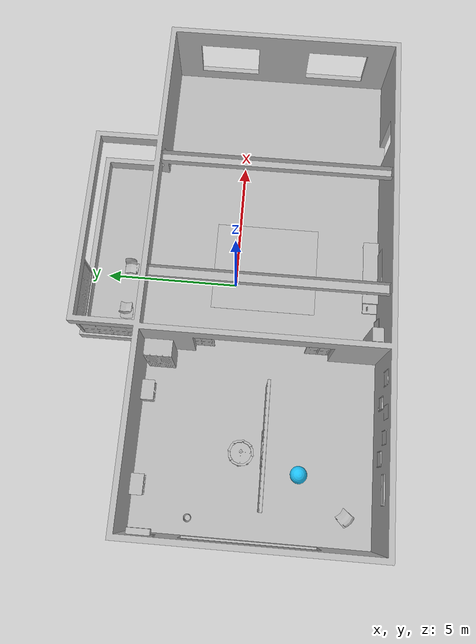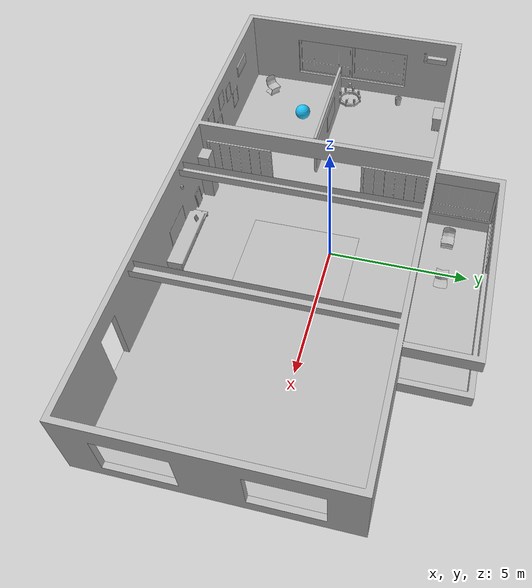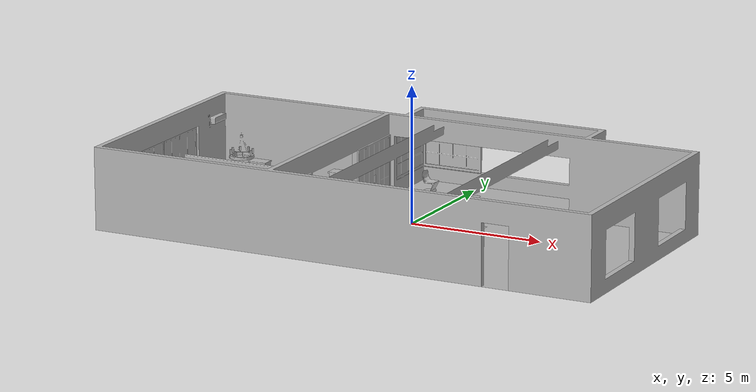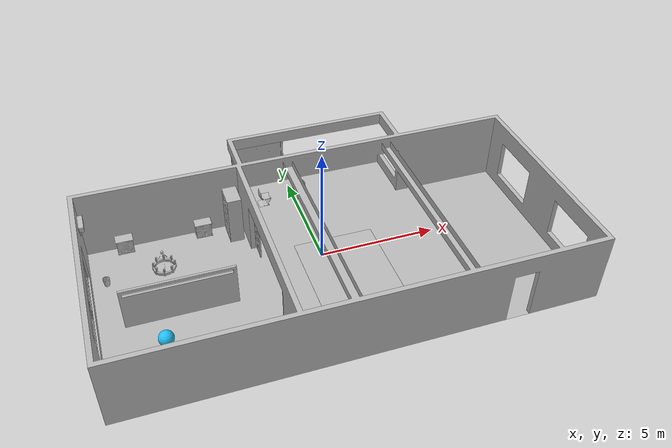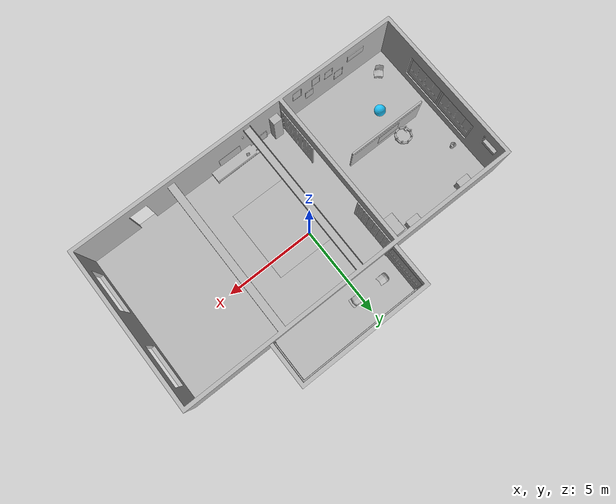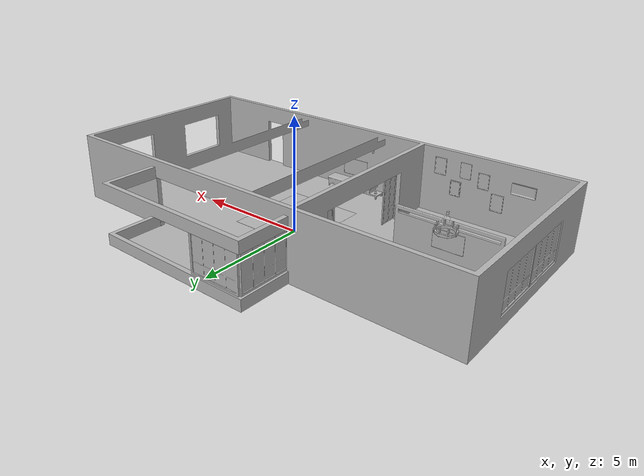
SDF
<sdf version="1.7">
 <world name="default">
  <model name="AirconditionerA_01_001">
   <static>1</static>
   <frame name="aws_robomaker_residential_AirconditionerA_01::__model__" attached_to="aws_robomaker_residential_AirconditionerA_01::link">
    <pose relative_to="__model__">0 0 0 0 -0 0</pose>
   </frame>
   <link name="aws_robomaker_residential_AirconditionerA_01::link">
    <inertial><mass>1</mass></inertial>
    <collision name="collision">
     <geometry>
      <mesh>
       <uri>model://aws_robomaker_residential_AirconditionerA_01/meshes/aws_AirconditionerA_01_collision.DAE</uri>
       <scale>1 1 1</scale>
      </mesh>
     </geometry>
    </collision>
    <visual name="visual">
     <geometry>
      <mesh>
       <uri>model://aws_robomaker_residential_AirconditionerA_01/meshes/aws_AirconditionerA_01_visual.DAE</uri>
      </mesh>
     </geometry>
     <meta><layer>1</layer></meta>
    </visual>
    <pose relative_to="aws_robomaker_residential_AirconditionerA_01::__model__">0 0 0 0 -0 0</pose>
   </link>
   <static>1</static>
   <pose>-9.19941 2.41123 2.08454 0 -0 0</pose>
  </model>
  <model name="AirconditionerB_01_001">
   <static>1</static>
   <frame name="aws_robomaker_residential_AirconditionerB_01::__model__" attached_to="aws_robomaker_residential_AirconditionerB_01::link">
    <pose relative_to="__model__">0 0 0 0 -0 0</pose>
   </frame>
   <link name="aws_robomaker_residential_AirconditionerB_01::link">
    <inertial><mass>1</mass></inertial>
    <collision name="collision">
     <geometry>
      <mesh>
       <uri>model://aws_robomaker_residential_AirconditionerB_01/meshes/aws_AirconditionerB_01_collision.DAE</uri>
       <scale>1 1 1</scale>
      </mesh>
     </geometry>
    </collision>
    <visual name="visual">
     <geometry>
      <mesh>
       <uri>model://aws_robomaker_residential_AirconditionerB_01/meshes/aws_AirconditionerB_01_visual.DAE</uri>
      </mesh>
     </geometry>
     <meta><layer>1</layer></meta>
    </visual>
    <pose relative_to="aws_robomaker_residential_AirconditionerB_01::__model__">0 0 0 0 -0 0</pose>
   </link>
   <pose>-2.00466 -5.22661 0.003485 0 -0 0</pose>
  </model>
  <model name="Ball_01_003">
   <static>1</static>
   <frame name="aws_robomaker_residential_Ball_01::__model__" attached_to="aws_robomaker_residential_Ball_01::link">
    <pose relative_to="__model__">0 0 0 0 -0 0</pose>
   </frame>
   <link name="aws_robomaker_residential_Ball_01::link">
    <inertial>
     <mass>0.12</mass>
     <inertia>
      <ixx>0.030752</ixx>
      <ixy>0</ixy>
      <ixz>0</ixz>
      <iyy>0.030752</iyy>
      <iyz>0</iyz>
      <izz>0.030752</izz>
     </inertia>
    </inertial>
    <collision name="collision">
     <geometry><sphere><radius>0.31</radius></sphere></geometry>
     <surface>
      <friction><ode><mu>0.85</mu><mu2>0.85</mu2></ode></friction>
      <contact><ode><kd>8500</kd><max_vel>5.1</max_vel></ode></contact>
     </surface>
    </collision>
    <visual name="visual">
     <geometry><sphere><radius>0.31</radius></sphere></geometry>
     <material><diffuse>0.12 0.76 0.97 1</diffuse><ambient>0.03 0.21 0.27 1</ambient></material>
     <meta><layer>1</layer></meta>
    </visual>
    <pose relative_to="aws_robomaker_residential_Ball_01::__model__">0 0 0 0 -0 0</pose>
   </link>
   <pose>-6.9455 -2.81099 0.318684 0 -0 0</pose>
  </model>
  <model name="NightStand_01_001">
   <static>1</static>
   <frame name="aws_robomaker_residential_NightStand_01::__model__" attached_to="aws_robomaker_residential_NightStand_01::link">
    <pose relative_to="__model__">0 0 0 0 -0 0</pose>
   </frame>
   <link name="aws_robomaker_residential_NightStand_01::link">
    <inertial>
     <mass>13.6</mass>
     <inertia><ixx>0.6165</ixx><ixy>0</ixy><ixz>0</ixz><iyy>1.29664</iyy><iyz>0</iyz><izz>0.7706</izz></inertia>
    </inertial>
    <collision name="collision">
     <geometry>
      <mesh>
       <uri>model://aws_robomaker_residential_NightStand_01/meshes/aws_NightStand_01_collision.DAE</uri>
       <scale>1 1 1</scale>
      </mesh>
     </geometry>
    </collision>
    <visual name="visual">
     <geometry>
      <mesh><uri>model://aws_robomaker_residential_NightStand_01/meshes/aws_NightStand_01_visual.DAE</uri></mesh>
     </geometry>
     <meta><layer>1</layer></meta>
    </visual>
    <pose relative_to="aws_robomaker_residential_NightStand_01::__model__">0 0 0 0 -0 0</pose>
   </link>
   <static>1</static>
   <pose>-7.72551 2.86042 0.005258 -2e-06 0 0</pose>
  </model>
  <model name="NightStand_01_002">
   <static>1</static>
   <frame name="aws_robomaker_residential_NightStand_01::__model__" attached_to="aws_robomaker_residential_NightStand_01::link">
    <pose relative_to="__model__">0 0 0 0 -0 0</pose>
   </frame>
   <link name="aws_robomaker_residential_NightStand_01::link">
    <inertial>
     <mass>13.6</mass>
     <inertia><ixx>0.6165</ixx><ixy>0</ixy><ixz>0</ixz><iyy>1.29664</iyy><iyz>0</iyz><izz>0.7706</izz></inertia>
    </inertial>
    <collision name="collision">
     <geometry>
      <mesh>
       <uri>model://aws_robomaker_residential_NightStand_01/meshes/aws_NightStand_01_collision.DAE</uri>
       <scale>1 1 1</scale>
      </mesh>
     </geometry>
    </collision>
    <visual name="visual">
     <geometry>
      <mesh><uri>model://aws_robomaker_residential_NightStand_01/meshes/aws_NightStand_01_visual.DAE</uri></mesh>
     </geometry>
     <meta><layer>1</layer></meta>
    </visual>
    <pose relative_to="aws_robomaker_residential_NightStand_01::__model__">0 0 0 0 -0 0</pose>
   </link>
   <static>1</static>
   <pose>-4.40734 2.86042 0.005256 0 2e-06 0</pose>
  </model>
  <model name="ChairD_01_001">
   <static>1</static>
   <frame name="aws_robomaker_residential_ChairD_01::__model__" attached_to="aws_robomaker_residential_ChairD_01::link">
    <pose relative_to="__model__">0 0 0 0 -0 0</pose>
   </frame>
   <link name="aws_robomaker_residential_ChairD_01::link">
    <inertial>
     <mass>4.5</mass>
     <inertia><ixy>0</ixy><ixz>0</ixz><iyz>0</iyz><ixx>0.217</ixx><iyy>0.217</iyy><izz>0.067</izz></inertia>
    </inertial>
    <collision name="collision">
     <geometry>
      <mesh>
       <uri>model://aws_robomaker_residential_ChairD_01/meshes/aws_ChairD_01_collision.DAE</uri>
       <scale>1 1 1</scale>
      </mesh>
     </geometry>
    </collision>
    <visual name="visual">
     <geometry>
      <mesh><uri>model://aws_robomaker_residential_ChairD_01/meshes/aws_ChairD_01_visual.DAE</uri></mesh>
     </geometry>
     <meta><layer>1</layer></meta>
    </visual>
    <pose relative_to="aws_robomaker_residential_ChairD_01::__model__">0 0 0 0 -0 0</pose>
   </link>
   <pose>-1.38078 4.10446 0 0 -0 0</pose>
  </model>
  <model name="ChairD_01_002">
   <static>1</static>
   <frame name="aws_robomaker_residential_ChairD_01::__model__" attached_to="aws_robomaker_residential_ChairD_01::link">
    <pose relative_to="__model__">0 0 0 0 -0 0</pose>
   </frame>
   <link name="aws_robomaker_residential_ChairD_01::link">
    <inertial>
     <mass>4.5</mass>
     <inertia><ixy>0</ixy><ixz>0</ixz><iyz>0</iyz><ixx>0.217</ixx><iyy>0.217</iyy><izz>0.067</izz></inertia>
    </inertial>
    <collision name="collision">
     <geometry>
      <mesh>
       <uri>model://aws_robomaker_residential_ChairD_01/meshes/aws_ChairD_01_collision.DAE</uri>
       <scale>1 1 1</scale>
      </mesh>
     </geometry>
    </collision>
    <visual name="visual">
     <geometry>
      <mesh><uri>model://aws_robomaker_residential_ChairD_01/meshes/aws_ChairD_01_visual.DAE</uri></mesh>
     </geometry>
     <meta><layer>1</layer></meta>
    </visual>
    <pose relative_to="aws_robomaker_residential_ChairD_01::__model__">0 0 0 0 -0 0</pose>
   </link>
   <pose>0.325214 4.10446 0 0 0 -3.13874</pose>
  </model>
  <model name="ChairD_01_003">
   <static>1</static>
   <frame name="aws_robomaker_residential_ChairD_01::__model__" attached_to="aws_robomaker_residential_ChairD_01::link">
    <pose relative_to="__model__">0 0 0 0 -0 0</pose>
   </frame>
   <link name="aws_robomaker_residential_ChairD_01::link">
    <inertial>
     <mass>4.5</mass>
     <inertia><ixy>0</ixy><ixz>0</ixz><iyz>0</iyz><ixx>0.217</ixx><iyy>0.217</iyy><izz>0.067</izz></inertia>
    </inertial>
    <collision name="collision">
     <geometry>
      <mesh>
       <uri>model://aws_robomaker_residential_ChairD_01/meshes/aws_ChairD_01_collision.DAE</uri>
       <scale>1 1 1</scale>
      </mesh>
     </geometry>
    </collision>
    <visual name="visual">
     <geometry>
      <mesh><uri>model://aws_robomaker_residential_ChairD_01/meshes/aws_ChairD_01_visual.DAE</uri></mesh>
     </geometry>
     <meta><layer>1</layer></meta>
    </visual>
    <pose relative_to="aws_robomaker_residential_ChairD_01::__model__">0 0 0 0 -0 0</pose>
   </link>
   <pose>-8.27078 -4.50446 0 0 -0 0.869673</pose>
  </model>
  <model name="Chandelier_01_002">
   <static>1</static>
   <frame name="aws_robomaker_residential_Chandelier_01::__model__" attached_to="aws_robomaker_residential_Chandelier_01::link">
    <pose relative_to="__model__">0 0 0 0 -0 0</pose>
   </frame>
   <link name="aws_robomaker_residential_Chandelier_01::link">
    <inertial><mass>1</mass></inertial>
    <collision name="collision">
     <geometry>
      <mesh>
       <uri>model://aws_robomaker_residential_Chandelier_01/meshes/aws_Chandelier_01_collision.DAE</uri>
       <scale>1 1 1</scale>
      </mesh>
     </geometry>
    </collision>
    <visual name="visual">
     <geometry>
      <mesh><uri>model://aws_robomaker_residential_Chandelier_01/meshes/aws_Chandelier_01_visual.DAE</uri></mesh>
     </geometry>
     <meta><layer>2</layer></meta>
    </visual>
    <pose relative_to="aws_robomaker_residential_Chandelier_01::__model__">0 0 0 0 -0 0</pose>
   </link>
   <static>1</static>
   <pose>-6.45106 -0.69204 1.81 0 -0 0</pose>
  </model>
  <model name="Carpet_01_001">
   <static>1</static>
   <frame name="aws_robomaker_residential_Carpet_01::__model__" attached_to="aws_robomaker_residential_Carpet_01::link">
    <pose relative_to="__model__">0 0 0 0 -0 0</pose>
   </frame>
   <link name="aws_robomaker_residential_Carpet_01::link">
    <inertial><mass>8.1</mass></inertial>
    <collision name="collision">
     <geometry>
      <mesh>
       <uri>model://aws_robomaker_residential_Carpet_01/meshes/aws_Carpet_01_collision.DAE</uri>
       <scale>1 1 0.95</scale>
      </mesh>
     </geometry>
     <surface><friction><ode><mu>100</mu><mu2>50</mu2></ode></friction></surface>
     <pose>0 0 -0.01 0 -0 0</pose>
    </collision>
    <visual name="visual">
     <geometry>
      <mesh><uri>model://aws_robomaker_residential_Carpet_01/meshes/aws_Carpet_01_visual.DAE</uri></mesh>
     </geometry>
     <meta><layer>1</layer></meta>
    </visual>
    <pose relative_to="aws_robomaker_residential_Carpet_01::__model__">0 0 0 0 -0 0</pose>
   </link>
   <static>1</static>
   <pose>0.78505 -1.10665 0.001106 0 -0 0</pose>
  </model>
  <model name="FoldingDoor_01_001">
   <static>1</static>
   <frame name="aws_robomaker_residential_FoldingDoor_01::__model__" attached_to="aws_robomaker_residential_FoldingDoor_01::link">
    <pose relative_to="__model__">0 0 0 0 -0 0</pose>
   </frame>
   <link name="aws_robomaker_residential_FoldingDoor_01::link">
    <inertial><mass>1</mass></inertial>
    <collision name="collision">
     <geometry>
      <mesh>
       <uri>model://aws_robomaker_residential_FoldingDoor_01/meshes/aws_FoldingDoor_01_collision.DAE</uri>
       <scale>1 1 1</scale>
      </mesh>
     </geometry>
    </collision>
    <visual name="visual">
     <geometry>
      <mesh><uri>model://aws_robomaker_residential_FoldingDoor_01/meshes/aws_FoldingDoor_01_visual.DAE</uri></mesh>
     </geometry>
     <meta><layer>2</layer></meta>
    </visual>
    <pose relative_to="aws_robomaker_residential_FoldingDoor_01::__model__">0 0 0 0 -0 0</pose>
   </link>
   <static>1</static>
   <pose>-2.4611 1.84422 0.041881 0 -0 0</pose>
  </model>
  <model name="FoldingDoor_01_002">
   <static>1</static>
   <frame name="aws_robomaker_residential_FoldingDoor_01::__model__" attached_to="aws_robomaker_residential_FoldingDoor_01::link">
    <pose relative_to="__model__">0 0 0 0 -0 0</pose>
   </frame>
   <link name="aws_robomaker_residential_FoldingDoor_01::link">
    <inertial><mass>1</mass></inertial>
    <collision name="collision">
     <geometry>
      <mesh>
       <uri>model://aws_robomaker_residential_FoldingDoor_01/meshes/aws_FoldingDoor_01_collision.DAE</uri>
       <scale>1 1 1</scale>
      </mesh>
     </geometry>
    </collision>
    <visual name="visual">
     <geometry>
      <mesh><uri>model://aws_robomaker_residential_FoldingDoor_01/meshes/aws_FoldingDoor_01_visual.DAE</uri></mesh>
     </geometry>
     <meta><layer>2</layer></meta>
    </visual>
    <pose relative_to="aws_robomaker_residential_FoldingDoor_01::__model__">0 0 0 0 -0 0</pose>
   </link>
   <static>1</static>
   <pose>-2.4611 -4.05332 0.041881 0 -0 0</pose>
  </model>
  <model name="HouseWallB_01_001">
   <static>1</static>
   <frame name="aws_robomaker_residential_HouseWallB_01::__model__" attached_to="aws_robomaker_residential_HouseWallB_01::link">
    <pose relative_to="__model__">0 0 0 0 -0 0</pose>
   </frame>
   <link name="aws_robomaker_residential_HouseWallB_01::link">
    <inertial><mass>1</mass></inertial>
    <collision name="collision">
     <geometry>
      <mesh>
       <uri>model://aws_robomaker_residential_HouseWallB_01/meshes/aws_HouseWallB_01_collision.DAE</uri>
       <scale>1 1 1</scale>
      </mesh>
     </geometry>
    </collision>
    <visual name="visual">
     <geometry>
      <mesh><uri>model://aws_robomaker_residential_HouseWallB_01/meshes/aws_HouseWallB_01_visual.DAE</uri></mesh>
     </geometry>
     <meta><layer>2</layer></meta>
    </visual>
    <pose relative_to="aws_robomaker_residential_HouseWallB_01::__model__">0 0 0 0 -0 0</pose>
   </link>
   <static>1</static>
  </model>
  <model name="FloorB_01_001">
   <static>1</static>
   <frame name="aws_robomaker_residential_FloorB_01::__model__" attached_to="aws_robomaker_residential_FloorB_01::link">
    <pose relative_to="__model__">0 0 0 0 -0 0</pose>
   </frame>
   <link name="aws_robomaker_residential_FloorB_01::link">
    <inertial><mass>100</mass></inertial>
    <collision name="collision">
     <geometry>
      <mesh>
       <uri>model://aws_robomaker_residential_FloorB_01/meshes/aws_FloorB_01_collision.DAE</uri>
       <scale>1 1 0.9</scale>
      </mesh>
     </geometry>
     <surface><friction><ode><mu>100</mu><mu2>50</mu2></ode></friction></surface>
    </collision>
    <visual name="visual">
     <geometry>
      <mesh><uri>model://aws_robomaker_residential_FloorB_01/meshes/aws_FloorB_01_visual.DAE</uri></mesh>
     </geometry>
     <meta><layer>1</layer></meta>
    </visual>
    <pose relative_to="aws_robomaker_residential_FloorB_01::__model__">0 0 0 0 -0 0</pose>
   </link>
   <static>1</static>
   <pose>0.005782 0.002082 0 0 -0 0</pose>
  </model>
  <model name="LightC_01_002">
   <static>1</static>
   <frame name="aws_robomaker_residential_LightC_01::__model__" attached_to="aws_robomaker_residential_LightC_01::link">
    <pose relative_to="__model__">0 0 0 0 -0 0</pose>
   </frame>
   <link name="aws_robomaker_residential_LightC_01::link">
    <inertial><mass>1</mass></inertial>
    <collision name="collision">
     <geometry>
      <mesh>
       <uri>model://aws_robomaker_residential_LightC_01/meshes/aws_LightC_01_collision.DAE</uri>
       <scale>1 1 1</scale>
      </mesh>
     </geometry>
    </collision>
    <visual name="visual">
     <geometry>
      <mesh><uri>model://aws_robomaker_residential_LightC_01/meshes/aws_LightC_01_visual.DAE</uri></mesh>
     </geometry>
     <meta><layer>2</layer></meta>
    </visual>
    <pose relative_to="aws_robomaker_residential_LightC_01::__model__">0 0 0 0 -0 0</pose>
   </link>
   <static>1</static>
   <pose>-0.138245 -5.44437 2 0 -0 0</pose>
  </model>
  <model name="PortraitA_01">
   <static>1</static>
   <frame name="aws_robomaker_residential_PortraitA_01::__model__" attached_to="aws_robomaker_residential_PortraitA_01::link">
    <pose relative_to="__model__">0 0 0 0 -0 0</pose>
   </frame>
   <link name="aws_robomaker_residential_PortraitA_01::link">
    <inertial><mass>1</mass></inertial>
    <collision name="collision">
     <geometry>
      <mesh>
       <uri>model://aws_robomaker_residential_PortraitA_01/meshes/aws_PortraitA_01_collision.DAE</uri>
       <scale>1 1 1</scale>
      </mesh>
     </geometry>
    </collision>
    <visual name="visual">
     <geometry>
      <mesh><uri>model://aws_robomaker_residential_PortraitA_01/meshes/aws_PortraitA_01_visual.DAE</uri></mesh>
     </geometry>
     <meta><layer>2</layer></meta>
    </visual>
    <pose relative_to="aws_robomaker_residential_PortraitA_01::__model__">0 0 0 0 -0 0</pose>
   </link>
   <static>1</static>
   <pose>-5.56271 -5.48923 1.66368 0 -0 0</pose>
  </model>
  <model name="PortraitB_01">
   <static>1</static>
   <frame name="aws_robomaker_residential_PortraitB_01::__model__" attached_to="aws_robomaker_residential_PortraitB_01::link">
    <pose relative_to="__model__">0 0 0 0 -0 0</pose>
   </frame>
   <link name="aws_robomaker_residential_PortraitB_01::link">
    <inertial><mass>1</mass></inertial>
    <collision name="collision">
     <geometry>
      <mesh>
       <uri>model://aws_robomaker_residential_PortraitB_01/meshes/aws_PortraitB_01_collision.DAE</uri>
       <scale>1 1 1</scale>
      </mesh>
     </geometry>
    </collision>
    <visual name="visual">
     <geometry>
      <mesh><uri>model://aws_robomaker_residential_PortraitB_01/meshes/aws_PortraitB_01_visual.DAE</uri></mesh>
     </geometry>
     <meta><layer>2</layer></meta>
    </visual>
    <pose relative_to="aws_robomaker_residential_PortraitB_01::__model__">0 0 0 0 -0 0</pose>
   </link>
   <static>1</static>
   <pose>-1.27968 -5.42963 0 -0.076901 0 -3.11672</pose>
  </model>
  <model name="PortraitB_03">
   <static>1</static>
   <frame name="aws_robomaker_residential_PortraitB_03::__model__" attached_to="aws_robomaker_residential_PortraitB_03::link">
    <pose relative_to="__model__">0 0 0 0 -0 0</pose>
   </frame>
   <link name="aws_robomaker_residential_PortraitB_03::link">
    <inertial><mass>1</mass></inertial>
    <collision name="collision">
     <geometry>
      <mesh>
       <uri>model://aws_robomaker_residential_PortraitB_03/meshes/aws_PortraitB_01_collision.DAE</uri>
       <scale>1 1 1</scale>
      </mesh>
     </geometry>
    </collision>
    <visual name="visual">
     <geometry>
      <mesh><uri>model://aws_robomaker_residential_PortraitB_03/meshes/aws_PortraitB_01_visual.DAE</uri></mesh>
     </geometry>
     <meta><layer>2</layer></meta>
    </visual>
    <pose relative_to="aws_robomaker_residential_PortraitB_03::__model__">0 0 0 0 -0 0</pose>
   </link>
   <static>1</static>
   <pose>-4.33482 -5.48084 1.02702 0 0.003154 3.14159</pose>
  </model>
  <model name="PortraitC_01">
   <static>1</static>
   <frame name="aws_robomaker_residential_PortraitC_01::__model__" attached_to="aws_robomaker_residential_PortraitC_01::link">
    <pose relative_to="__model__">0 0 0 0 -0 0</pose>
   </frame>
   <link name="aws_robomaker_residential_PortraitC_01::link">
    <inertial><mass>1</mass></inertial>
    <collision name="collision">
     <geometry>
      <mesh>
       <uri>model://aws_robomaker_residential_PortraitC_01/meshes/aws_PortraitC_01_collision.DAE</uri>
       <scale>1 1 1</scale>
      </mesh>
     </geometry>
    </collision>
    <visual name="visual">
     <geometry>
      <mesh><uri>model://aws_robomaker_residential_PortraitC_01/meshes/aws_PortraitC_01_visual.DAE</uri></mesh>
     </geometry>
     <meta><layer>2</layer></meta>
    </visual>
    <pose relative_to="aws_robomaker_residential_PortraitC_01::__model__">0 0 0 0 -0 0</pose>
   </link>
   <static>1</static>
   <pose>-4.73768 -5.48929 1.92396 0 -0 -3.14159</pose>
  </model>
  <model name="PortraitD_01">
   <static>1</static>
   <frame name="aws_robomaker_residential_PortraitD_01::__model__" attached_to="aws_robomaker_residential_PortraitD_01::link">
    <pose relative_to="__model__">0 0 0 0 -0 0</pose>
   </frame>
   <link name="aws_robomaker_residential_PortraitD_01::link">
    <inertial><mass>1.5</mass></inertial>
    <collision name="collision">
     <geometry>
      <mesh>
       <uri>model://aws_robomaker_residential_PortraitD_01/meshes/aws_PortraitD_01_collision.DAE</uri>
       <scale>1 1 1</scale>
      </mesh>
     </geometry>
    </collision>
    <visual name="visual">
     <geometry>
      <mesh><uri>model://aws_robomaker_residential_PortraitD_01/meshes/aws_PortraitD_01_visual.DAE</uri></mesh>
     </geometry>
     <meta><layer>2</layer></meta>
    </visual>
    <pose relative_to="aws_robomaker_residential_PortraitD_01::__model__">0 0 0 0 -0 0</pose>
   </link>
   <static>1</static>
   <pose>-7.26695 -5.47807 1.81535 0 -0 3.14159</pose>
  </model>
  <model name="PortraitE_01">
   <static>1</static>
   <frame name="aws_robomaker_residential_PortraitE_01::__model__" attached_to="aws_robomaker_residential_PortraitE_01::link">
    <pose relative_to="__model__">0 0 0 0 -0 0</pose>
   </frame>
   <link name="aws_robomaker_residential_PortraitE_01::link">
    <inertial><mass>1</mass></inertial>
    <collision name="collision">
     <geometry>
      <mesh>
       <uri>model://aws_robomaker_residential_PortraitE_01/meshes/aws_PortraitE_01_collision.DAE</uri>
       <scale>1 1 1</scale>
      </mesh>
     </geometry>
    </collision>
    <visual name="visual">
     <geometry>
      <mesh><uri>model://aws_robomaker_residential_PortraitE_01/meshes/aws_PortraitE_01_visual.DAE</uri></mesh>
     </geometry>
     <meta><layer>2</layer></meta>
    </visual>
    <pose relative_to="aws_robomaker_residential_PortraitE_01::__model__">0 0 0 0 -0 0</pose>
   </link>
   <static>1</static>
   <pose>-3.56756 -5.48811 1.83658 0 -0 3.14159</pose>
  </model>
  <model name="PortraitE_02">
   <static>1</static>
   <frame name="aws_robomaker_residential_PortraitE_02::__model__" attached_to="aws_robomaker_residential_PortraitE_02::link">
    <pose relative_to="__model__">0 0 0 0 -0 0</pose>
   </frame>
   <link name="aws_robomaker_residential_PortraitE_02::link">
    <inertial><mass>1</mass></inertial>
    <collision name="collision">
     <geometry>
      <mesh>
       <uri>model://aws_robomaker_residential_PortraitE_02/meshes/aws_PortraitE_01_collision.DAE</uri>
       <scale>1 1 1</scale>
      </mesh>
     </geometry>
    </collision>
    <visual name="visual">
     <geometry>
      <mesh><uri>model://aws_robomaker_residential_PortraitE_02/meshes/aws_PortraitE_01_visual.DAE</uri></mesh>
     </geometry>
     <meta><layer>2</layer></meta>
    </visual>
    <pose relative_to="aws_robomaker_residential_PortraitE_02::__model__">0 0 0 0 -0 0</pose>
   </link>
   <static>1</static>
   <pose>-6.23054 -5.48811 0.836347 0 0 -3.14159</pose>
  </model>
  <model name="DeskPortraitA_01">
   <static>1</static>
   <frame name="aws_robomaker_residential_DeskPortraitA_01::__model__" attached_to="aws_robomaker_residential_DeskPortraitA_01::link">
    <pose relative_to="__model__">0 0 0 0 -0 0</pose>
   </frame>
   <link name="aws_robomaker_residential_DeskPortraitA_01::link">
    <inertial>
     <mass>1</mass>
     <inertia><ixx>0.0835</ixx><ixy>0</ixy><ixz>0</ixz><iyy>0.16</iyy><iyz>0</iyz><izz>0.08347</izz></inertia>
    </inertial>
    <collision name="collision">
     <geometry>
      <mesh>
       <uri>model://aws_robomaker_residential_DeskPortraitA_01/meshes/aws_DeskPortraitA_01_collision.DAE</uri>
       <scale>1 1 1</scale>
      </mesh>
     </geometry>
    </collision>
    <visual name="visual">
     <geometry>
      <mesh>
       <uri>model://aws_robomaker_residential_DeskPortraitA_01/meshes/aws_DeskPortraitA_01_visual.DAE</uri>
      </mesh>
     </geometry>
     <meta><layer>1</layer></meta>
    </visual>
    <pose relative_to="aws_robomaker_residential_DeskPortraitA_01::__model__">0 0 0 0 -0 0</pose>
   </link>
   <pose>-0.036864 -5.11016 0.49866 0 -0 2.92778</pose>
  </model>
  <model name="DeskPortraitD_02">
   <static>1</static>
   <frame name="aws_robomaker_residential_DeskPortraitD_02::__model__" attached_to="aws_robomaker_residential_DeskPortraitD_02::link">
    <pose relative_to="__model__">0 0 0 0 -0 0</pose>
   </frame>
   <link name="aws_robomaker_residential_DeskPortraitD_02::link">
    <inertial>
     <mass>0.4</mass>
     <inertia><ixx>0.0616</ixx><ixy>0</ixy><ixz>0</ixz><iyy>0.1313</iyy><iyz>0</iyz><izz>0.0803</izz></inertia>
    </inertial>
    <collision name="collision">
     <geometry>
      <mesh>
       <uri>model://aws_robomaker_residential_DeskPortraitD_02/meshes/aws_DeskPortraitD_01_collision.DAE</uri>
       <scale>1 1 1</scale>
      </mesh>
     </geometry>
     <surface>
      <friction><ode><mu>0.7</mu><mu2>0.7</mu2></ode></friction>
      <contact><ode><kd>28500</kd></ode></contact>
     </surface>
    </collision>
    <visual name="visual">
     <geometry>
      <mesh>
       <uri>model://aws_robomaker_residential_DeskPortraitD_02/meshes/aws_DeskPortraitD_01_visual.DAE</uri>
      </mesh>
     </geometry>
     <meta><layer>1</layer></meta>
    </visual>
    <pose relative_to="aws_robomaker_residential_DeskPortraitD_02::__model__">0 0 0 0 -0 0</pose>
   </link>
   <pose>-0.589211 -5.10989 0.192145 -1.5e-05 -0.000174 -3.11254</pose>
  </model>
  <model name="Trash_01_002">
   <static>1</static>
   <frame name="aws_robomaker_residential_Trash_01::__model__" attached_to="aws_robomaker_residential_Trash_01::link">
    <pose relative_to="__model__">0 0 0 0 -0 0</pose>
   </frame>
   <link name="aws_robomaker_residential_Trash_01::link">
    <inertial>
     <mass>0.1</mass>
     <inertia><ixy>0</ixy><ixz>0</ixz><iyz>0</iyz><ixx>0.05288</ixx><iyy>0.05288</iyy><izz>0.09132</izz></inertia>
    </inertial>
    <collision name="collision">
     <geometry>
      <mesh>
       <uri>model://aws_robomaker_residential_Trash_01/meshes/aws_Trash_01_collision.DAE</uri>
       <scale>1 1 1</scale>
      </mesh>
     </geometry>
    </collision>
    <visual name="visual">
     <geometry>
      <mesh><uri>model://aws_robomaker_residential_Trash_01/meshes/aws_Trash_01_visual.DAE</uri></mesh>
     </geometry>
     <meta><layer>1</layer></meta>
    </visual>
    <pose relative_to="aws_robomaker_residential_Trash_01::__model__">0 0 0 0 -0 0</pose>
   </link>
   <pose>-8.70415 1.00058 0.011 0 -0 0</pose>
  </model>
  <model name="TV_01_001">
   <static>1</static>
   <frame name="aws_robomaker_residential_TV_01::__model__" attached_to="aws_robomaker_residential_TV_01::link">
    <pose relative_to="__model__">0 0 0 0 -0 0</pose>
   </frame>
   <link name="aws_robomaker_residential_TV_01::link">
    <inertial><mass>1</mass></inertial>
    <collision name="collision">
     <geometry>
      <mesh>
       <uri>model://aws_robomaker_residential_TV_01/meshes/aws_TV_01_collision.DAE</uri>
       <scale>1 1 1</scale>
      </mesh>
     </geometry>
    </collision>
    <visual name="visual">
     <geometry>
      <mesh><uri>model://aws_robomaker_residential_TV_01/meshes/aws_TV_01_visual.DAE</uri></mesh>
     </geometry>
     <meta><layer>2</layer></meta>
    </visual>
    <pose relative_to="aws_robomaker_residential_TV_01::__model__">0 0 0 0 -0 0</pose>
   </link>
   <static>1</static>
   <pose>0.824259 -5.38297 0.676282 0 0 -1.56174</pose>
  </model>
  <model name="TV_02_001">
   <static>1</static>
   <frame name="aws_robomaker_residential_TV_02::__model__" attached_to="aws_robomaker_residential_TV_02::link">
    <pose relative_to="__model__">0 0 0 0 -0 0</pose>
   </frame>
   <link name="aws_robomaker_residential_TV_02::link">
    <inertial><mass>1</mass></inertial>
    <collision name="collision">
     <geometry>
      <mesh>
       <uri>model://aws_robomaker_residential_TV_02/meshes/aws_TV_01_collision.DAE</uri>
       <scale>1 1 1</scale>
      </mesh>
     </geometry>
    </collision>
    <visual name="visual">
     <geometry>
      <mesh><uri>model://aws_robomaker_residential_TV_02/meshes/aws_TV_01_visual.DAE</uri></mesh>
     </geometry>
     <meta><layer>2</layer></meta>
    </visual>
    <pose relative_to="aws_robomaker_residential_TV_02::__model__">0 0 0 0 -0 0</pose>
   </link>
   <static>1</static>
   <pose>-6.19732 -1.38874 0.676282 0 0 -1.56174</pose>
  </model>
  <model name="TVCabinet_01_001">
   <static>1</static>
   <frame name="aws_robomaker_residential_TVCabinet_01::__model__" attached_to="aws_robomaker_residential_TVCabinet_01::link">
    <pose relative_to="__model__">0 0 0 0 -0 0</pose>
   </frame>
   <link name="aws_robomaker_residential_TVCabinet_01::link">
    <inertial>
     <mass>59.2</mass>
     <inertia><ixx>30.4</ixx><ixy>0</ixy><ixz>0</ixz><iyy>2.56</iyy><iyz>0</iyz><izz>31.38</izz></inertia>
    </inertial>
    <collision name="collision">
     <geometry>
      <mesh>
       <uri>model://aws_robomaker_residential_TVCabinet_01/meshes/aws_TVCabinet_01_collision.DAE</uri>
       <scale>1 1 1</scale>
      </mesh>
     </geometry>
    </collision>
    <visual name="visual">
     <geometry>
      <mesh><uri>model://aws_robomaker_residential_TVCabinet_01/meshes/aws_TVCabinet_01_visual.DAE</uri></mesh>
     </geometry>
     <meta><layer>1</layer></meta>
    </visual>
    <pose relative_to="aws_robomaker_residential_TVCabinet_01::__model__">0 0 0 0 -0 0</pose>
   </link>
   <static>1</static>
   <pose>0.629509 -5.18358 -0.017049 0 -0 1.5792</pose>
  </model>
  <model name="RoomWall_01_001">
   <static>1</static>
   <frame name="aws_robomaker_residential_RoomWall_01::__model__" attached_to="aws_robomaker_residential_RoomWall_01::link">
    <pose relative_to="__model__">0 0 0 0 -0 0</pose>
   </frame>
   <link name="aws_robomaker_residential_RoomWall_01::link">
    <inertial><mass>100</mass></inertial>
    <collision name="collision">
     <geometry>
      <mesh>
       <uri>model://aws_robomaker_residential_RoomWall_01/meshes/aws_RoomWall_01_collision.DAE</uri>
       <scale>1 1 1</scale>
      </mesh>
     </geometry>
    </collision>
    <visual name="visual">
     <geometry>
      <mesh><uri>model://aws_robomaker_residential_RoomWall_01/meshes/aws_RoomWall_01_visual.DAE</uri></mesh>
     </geometry>
     <meta><layer>2</layer></meta>
    </visual>
    <pose relative_to="aws_robomaker_residential_RoomWall_01::__model__">0 0 0 0 -0 0</pose>
   </link>
   <static>1</static>
   <pose>-6.09755 -1.49618 0.028124 0 -0 0</pose>
  </model>
  <model name="Wardrobe_01_001">
   <static>1</static>
   <frame name="aws_robomaker_residential_Wardrobe_01::__model__" attached_to="aws_robomaker_residential_Wardrobe_01::link">
    <pose relative_to="__model__">0 0 0 0 -0 0</pose>
   </frame>
   <link name="aws_robomaker_residential_Wardrobe_01::link">
    <inertial><mass>51.7</mass></inertial>
    <collision name="collision">
     <geometry>
      <mesh>
       <uri>model://aws_robomaker_residential_Wardrobe_01/meshes/aws_Wardrobe_01_collision.DAE</uri>
       <scale>1 1 1</scale>
      </mesh>
     </geometry>
    </collision>
    <visual name="visual">
     <geometry>
      <mesh><uri>model://aws_robomaker_residential_Wardrobe_01/meshes/aws_Wardrobe_01_visual.DAE</uri></mesh>
     </geometry>
     <meta><layer>1</layer></meta>
    </visual>
    <pose relative_to="aws_robomaker_residential_Wardrobe_01::__model__">0 0 0 0 -0 0</pose>
   </link>
   <static>1</static>
   <pose>-3.14671 2.4762 0.000704 0 0 -1.56967</pose>
  </model>
  <model name="RoomWindow_01_001">
   <static>1</static>
   <frame name="aws_robomaker_residential_RoomWindow_01::__model__" attached_to="aws_robomaker_residential_RoomWindow_01::link">
    <pose relative_to="__model__">0 0 0 0 -0 0</pose>
   </frame>
   <link name="aws_robomaker_residential_RoomWindow_01::link">
    <inertial><mass>1</mass></inertial>
    <collision name="collision">
     <geometry>
      <mesh>
       <uri>model://aws_robomaker_residential_RoomWindow_01/meshes/aws_RoomWindow_01_collision.DAE</uri>
       <scale>1 1 1</scale>
      </mesh>
     </geometry>
    </collision>
    <visual name="visual">
     <geometry>
      <mesh><uri>model://aws_robomaker_residential_RoomWindow_01/meshes/aws_RoomWindow_01_visual.DAE</uri></mesh>
     </geometry>
     <meta><layer>2</layer></meta>
    </visual>
    <pose relative_to="aws_robomaker_residential_RoomWindow_01::__model__">0 0 0 0 -0 0</pose>
   </link>
   <static>1</static>
   <pose>-9.4186 -0.026285 0.502739 0 -0 0</pose>
  </model>
  <model name="RoomWindow_01_002">
   <static>1</static>
   <frame name="aws_robomaker_residential_RoomWindow_01::__model__" attached_to="aws_robomaker_residential_RoomWindow_01::link">
    <pose relative_to="__model__">0 0 0 0 -0 0</pose>
   </frame>
   <link name="aws_robomaker_residential_RoomWindow_01::link">
    <inertial><mass>1</mass></inertial>
    <collision name="collision">
     <geometry>
      <mesh>
       <uri>model://aws_robomaker_residential_RoomWindow_01/meshes/aws_RoomWindow_01_collision.DAE</uri>
       <scale>1 1 1</scale>
      </mesh>
     </geometry>
    </collision>
    <visual name="visual">
     <geometry>
      <mesh><uri>model://aws_robomaker_residential_RoomWindow_01/meshes/aws_RoomWindow_01_visual.DAE</uri></mesh>
     </geometry>
     <meta><layer>2</layer></meta>
    </visual>
    <pose relative_to="aws_robomaker_residential_RoomWindow_01::__model__">0 0 0 0 -0 0</pose>
   </link>
   <static>1</static>
   <pose>-9.4186 -2.37409 0.502739 0 -0 0</pose>
  </model>
  <model name="RoomWindow_01_008">
   <static>1</static>
   <frame name="aws_robomaker_residential_RoomWindow_01::__model__" attached_to="aws_robomaker_residential_RoomWindow_01::link">
    <pose relative_to="__model__">0 0 0 0 -0 0</pose>
   </frame>
   <link name="aws_robomaker_residential_RoomWindow_01::link">
    <inertial><mass>1</mass></inertial>
    <collision name="collision">
     <geometry>
      <mesh>
       <uri>model://aws_robomaker_residential_RoomWindow_01/meshes/aws_RoomWindow_01_collision.DAE</uri>
       <scale>1 1 1</scale>
      </mesh>
     </geometry>
    </collision>
    <visual name="visual">
     <geometry>
      <mesh><uri>model://aws_robomaker_residential_RoomWindow_01/meshes/aws_RoomWindow_01_visual.DAE</uri></mesh>
     </geometry>
     <meta><layer>2</layer></meta>
    </visual>
    <pose relative_to="aws_robomaker_residential_RoomWindow_01::__model__">0 0 0 0 -0 0</pose>
   </link>
   <static>1</static>
   <pose>-1.19934 5.60069 0.502739 0 0 -1.56627</pose>
  </model>
  <model name="RoomWindow_01_009">
   <static>1</static>
   <frame name="aws_robomaker_residential_RoomWindow_01::__model__" attached_to="aws_robomaker_residential_RoomWindow_01::link">
    <pose relative_to="__model__">0 0 0 0 -0 0</pose>
   </frame>
   <link name="aws_robomaker_residential_RoomWindow_01::link">
    <inertial><mass>1</mass></inertial>
    <collision name="collision">
     <geometry>
      <mesh>
       <uri>model://aws_robomaker_residential_RoomWindow_01/meshes/aws_RoomWindow_01_collision.DAE</uri>
       <scale>1 1 1</scale>
      </mesh>
     </geometry>
    </collision>
    <visual name="visual">
     <geometry>
      <mesh><uri>model://aws_robomaker_residential_RoomWindow_01/meshes/aws_RoomWindow_01_visual.DAE</uri></mesh>
     </geometry>
     <meta><layer>2</layer></meta>
    </visual>
    <pose relative_to="aws_robomaker_residential_RoomWindow_01::__model__">0 0 0 0 -0 0</pose>
   </link>
   <static>1</static>
   <pose>-2.39662 4.38761 0.502739 0 -0 0</pose>
  </model>
 </world>
</sdf>
